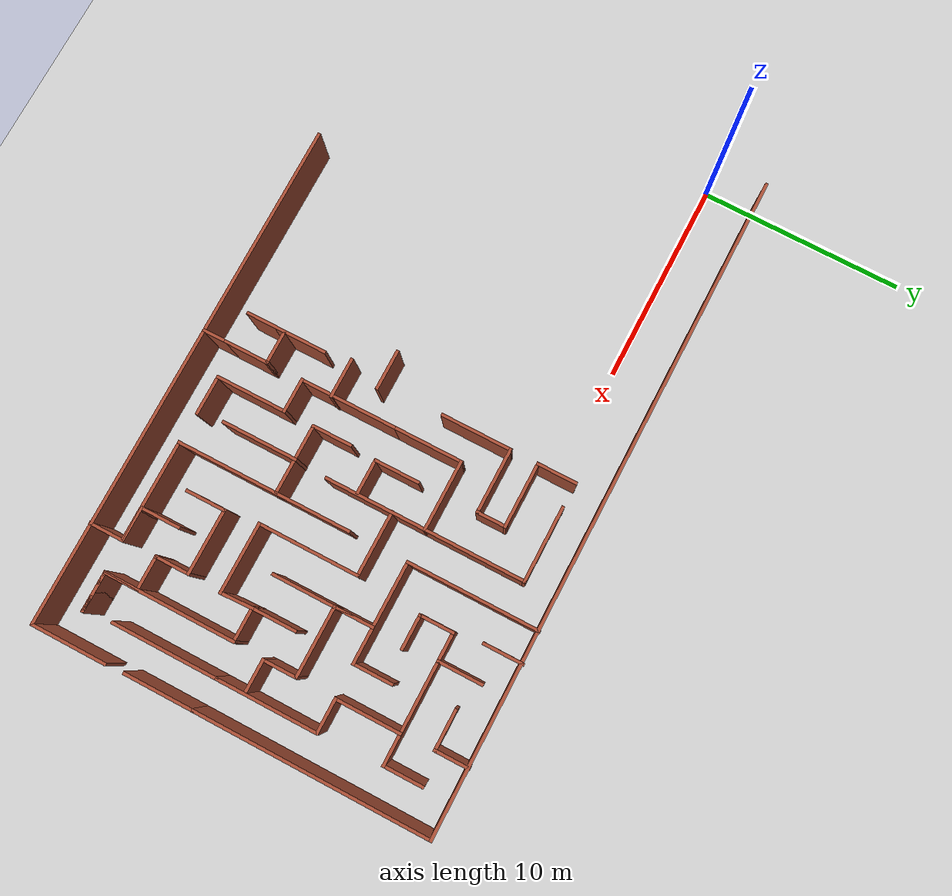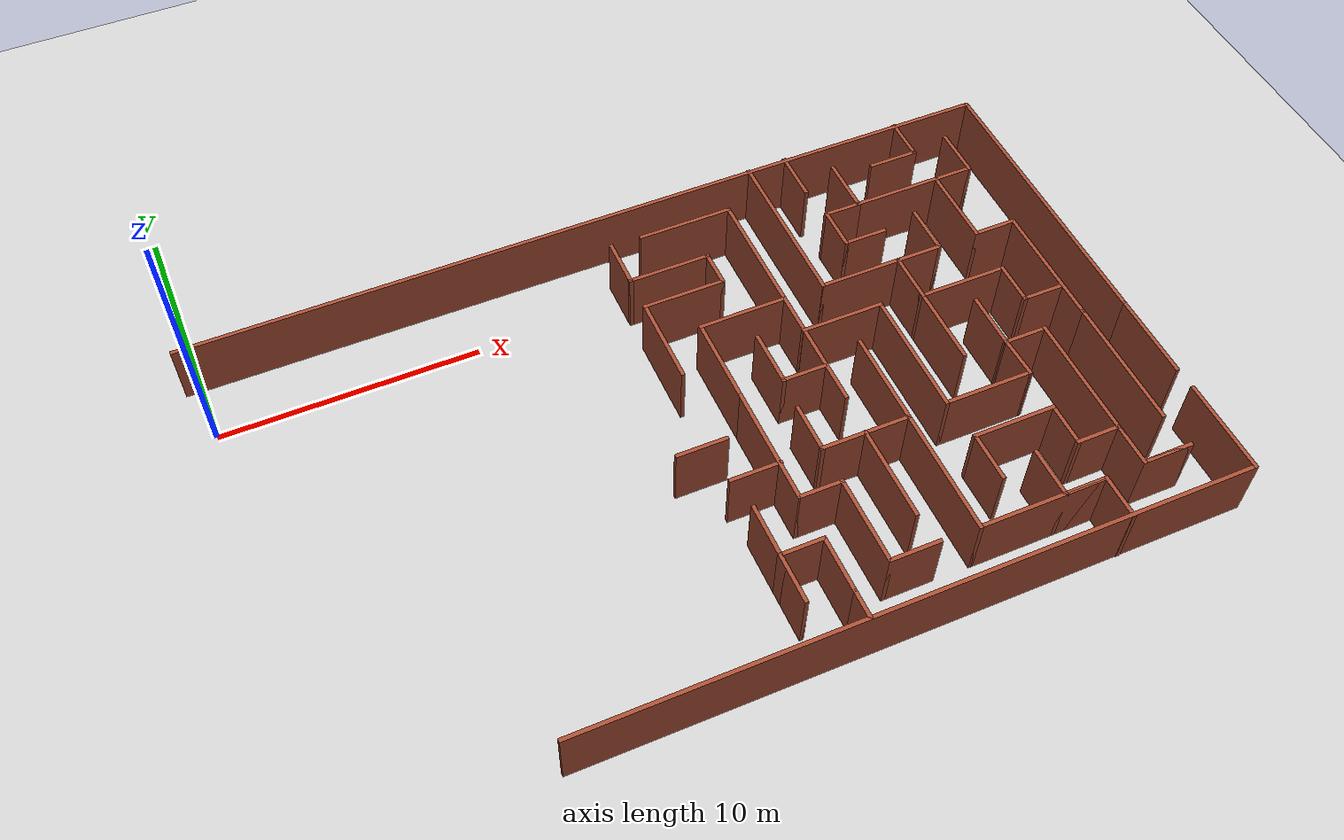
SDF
<sdf version="1.7">
 <world name="default">
  <model name="ground_plane">
   <static>1</static>
   <link name="link">
    <collision name="collision">
     <geometry><plane><normal>0 0 1</normal><size>100 100</size></plane></geometry>
     <surface>
      <contact><collide_bitmask>65535</collide_bitmask></contact>
      <friction><ode><mu>100</mu><mu2>50</mu2></ode></friction>
     </surface>
    </collision>
    <visual name="visual">
     <cast_shadows>0</cast_shadows>
     <geometry><plane><normal>0 0 1</normal><size>100 100</size></plane></geometry>
     <material>
      <script><uri>file://media/materials/scripts/gazebo.material</uri><name>Gazebo/Grey</name></script>
     </material>
    </visual>
   </link>
  </model>
  <model name="model_maze_2">
   <pose>15.6512 -7.28491 0 0 -0 0</pose>
   <link name="Wall_1">
    <collision name="Wall_1_Collision">
     <geometry><box><size>32.5 0.15 2.5</size></box></geometry>
     <pose>0 0 1.25 0 -0 0</pose>
    </collision>
    <visual name="Wall_1_Visual">
     <pose>0 0 1.25 0 -0 0</pose>
     <geometry><box><size>32.5 0.15 2.5</size></box></geometry>
     <material>
      <script><uri>file://media/materials/scripts/gazebo.material</uri><name>Gazebo/Bricks</name></script>
      <ambient>1 1 1 1</ambient>
     </material>
     <meta><layer>0</layer></meta>
    </visual>
    <pose>0.01583 9.60468 0 0 -0 0</pose>
   </link>
   <link name="Wall_100">
    <collision name="Wall_100_Collision">
     <geometry><box><size>1.75 0.15 2.5</size></box></geometry>
     <pose>0 0 1.25 0 -0 0</pose>
    </collision>
    <visual name="Wall_100_Visual">
     <pose>0 0 1.25 0 -0 0</pose>
     <geometry><box><size>1.75 0.15 2.5</size></box></geometry>
     <material>
      <script><uri>file://media/materials/scripts/gazebo.material</uri><name>Gazebo/Bricks</name></script>
      <ambient>1 1 1 1</ambient>
     </material>
     <meta><layer>0</layer></meta>
    </visual>
    <pose>11.303 -5.61671 0 0 -0 1.5708</pose>
   </link>
   <link name="Wall_101">
    <collision name="Wall_101_Collision">
     <geometry><box><size>3.25 0.15 2.5</size></box></geometry>
     <pose>0 0 1.25 0 -0 0</pose>
    </collision>
    <visual name="Wall_101_Visual">
     <pose>0 0 1.25 0 -0 0</pose>
     <geometry><box><size>3.25 0.15 2.5</size></box></geometry>
     <material>
      <script><uri>file://media/materials/scripts/gazebo.material</uri><name>Gazebo/Bricks</name></script>
      <ambient>1 1 1 1</ambient>
     </material>
     <meta><layer>0</layer></meta>
    </visual>
    <pose>9.75296 -4.81671 0 0 -0 3.14159</pose>
   </link>
   <link name="Wall_102">
    <collision name="Wall_102_Collision">
     <geometry><box><size>2 0.15 2.5</size></box></geometry>
     <pose>0 0 1.25 0 -0 0</pose>
    </collision>
    <visual name="Wall_102_Visual">
     <pose>0 0 1.25 0 -0 0</pose>
     <geometry><box><size>2 0.15 2.5</size></box></geometry>
     <material>
      <script><uri>file://media/materials/scripts/gazebo.material</uri><name>Gazebo/Bricks</name></script>
      <ambient>1 1 1 1</ambient>
     </material>
     <meta><layer>0</layer></meta>
    </visual>
    <pose>8.20296 -5.74171 0 0 -0 -1.5708</pose>
   </link>
   <link name="Wall_104">
    <collision name="Wall_104_Collision">
     <geometry><box><size>5.25 0.15 2.5</size></box></geometry>
     <pose>0 0 1.25 0 -0 0</pose>
    </collision>
    <visual name="Wall_104_Visual">
     <pose>0 0 1.25 0 -0 0</pose>
     <geometry><box><size>5.25 0.15 2.5</size></box></geometry>
     <material>
      <script><uri>file://media/materials/scripts/gazebo.material</uri><name>Gazebo/Bricks</name></script>
      <ambient>1 1 1 1</ambient>
     </material>
     <meta><layer>0</layer></meta>
    </visual>
    <pose>14.587 -4.07531 0 0 -0 -1.5708</pose>
   </link>
   <link name="Wall_106">
    <collision name="Wall_106_Collision">
     <geometry><box><size>3.5 0.15 2.5</size></box></geometry>
     <pose>0 0 1.25 0 -0 0</pose>
    </collision>
    <visual name="Wall_106_Visual">
     <pose>0 0 1.25 0 -0 0</pose>
     <geometry><box><size>3.5 0.15 2.5</size></box></geometry>
     <material>
      <script><uri>file://media/materials/scripts/gazebo.material</uri><name>Gazebo/Bricks</name></script>
      <ambient>1 1 1 1</ambient>
     </material>
     <meta><layer>0</layer></meta>
    </visual>
    <pose>16.1908 -3.42032 0 0 -0 -1.5708</pose>
   </link>
   <link name="Wall_108">
    <collision name="Wall_108_Collision">
     <geometry><box><size>4.75 0.15 2.5</size></box></geometry>
     <pose>0 0 1.25 0 -0 0</pose>
    </collision>
    <visual name="Wall_108_Visual">
     <pose>0 0 1.25 0 -0 0</pose>
     <geometry><box><size>4.75 0.15 2.5</size></box></geometry>
     <material>
      <script><uri>file://media/materials/scripts/gazebo.material</uri><name>Gazebo/Bricks</name></script>
      <ambient>1 1 1 1</ambient>
     </material>
     <meta><layer>0</layer></meta>
    </visual>
    <pose>1.57577 -2.37523 0 0 -0 -1.5708</pose>
   </link>
   <link name="Wall_109">
    <collision name="Wall_109_Collision">
     <geometry><box><size>1.75 0.15 2.5</size></box></geometry>
     <pose>0 0 1.25 0 -0 0</pose>
    </collision>
    <visual name="Wall_109_Visual">
     <pose>0 0 1.25 0 -0 0</pose>
     <geometry><box><size>1.75 0.15 2.5</size></box></geometry>
     <material>
      <script><uri>file://media/materials/scripts/gazebo.material</uri><name>Gazebo/Bricks</name></script>
      <ambient>1 1 1 1</ambient>
     </material>
     <meta><layer>0</layer></meta>
    </visual>
    <pose>2.37577 -4.67523 0 0 -0 0</pose>
   </link>
   <link name="Wall_110">
    <collision name="Wall_110_Collision">
     <geometry><box><size>3.5 0.15 2.5</size></box></geometry>
     <pose>0 0 1.25 0 -0 0</pose>
    </collision>
    <visual name="Wall_110_Visual">
     <pose>0 0 1.25 0 -0 0</pose>
     <geometry><box><size>3.5 0.15 2.5</size></box></geometry>
     <material>
      <script><uri>file://media/materials/scripts/gazebo.material</uri><name>Gazebo/Bricks</name></script>
      <ambient>1 1 1 1</ambient>
     </material>
     <meta><layer>0</layer></meta>
    </visual>
    <pose>3.17577 -6.35023 0 0 -0 -1.5708</pose>
   </link>
   <link name="Wall_111">
    <collision name="Wall_111_Collision">
     <geometry><box><size>2 0.15 2.5</size></box></geometry>
     <pose>0 0 1.25 0 -0 0</pose>
    </collision>
    <visual name="Wall_111_Visual">
     <pose>0 0 1.25 0 -0 0</pose>
     <geometry><box><size>2 0.15 2.5</size></box></geometry>
     <material>
      <script><uri>file://media/materials/scripts/gazebo.material</uri><name>Gazebo/Bricks</name></script>
      <ambient>1 1 1 1</ambient>
     </material>
     <meta><layer>0</layer></meta>
    </visual>
    <pose>4.10077 -8.02523 0 0 -0 0</pose>
   </link>
   <link name="Wall_113">
    <collision name="Wall_113_Collision">
     <geometry><box><size>3.75 0.15 2.5</size></box></geometry>
     <pose>0 0 1.25 0 -0 0</pose>
    </collision>
    <visual name="Wall_113_Visual">
     <pose>0 0 1.25 0 -0 0</pose>
     <geometry><box><size>3.75 0.15 2.5</size></box></geometry>
     <material>
      <script><uri>file://media/materials/scripts/gazebo.material</uri><name>Gazebo/Bricks</name></script>
      <ambient>1 1 1 1</ambient>
     </material>
     <meta><layer>0</layer></meta>
    </visual>
    <pose>6.51493 -1.41297 0 0 -0 -1.5708</pose>
   </link>
   <link name="Wall_114">
    <collision name="Wall_114_Collision">
     <geometry><box><size>3.5 0.15 2.5</size></box></geometry>
     <pose>0 0 1.25 0 -0 0</pose>
    </collision>
    <visual name="Wall_114_Visual">
     <pose>0 0 1.25 0 -0 0</pose>
     <geometry><box><size>3.5 0.15 2.5</size></box></geometry>
     <material>
      <script><uri>file://media/materials/scripts/gazebo.material</uri><name>Gazebo/Bricks</name></script>
      <ambient>1 1 1 1</ambient>
     </material>
     <meta><layer>0</layer></meta>
    </visual>
    <pose>4.83993 -3.21297 0 0 -0 3.14159</pose>
   </link>
   <link name="Wall_115">
    <collision name="Wall_115_Collision">
     <geometry><box><size>2 0.15 2.5</size></box></geometry>
     <pose>0 0 1.25 0 -0 0</pose>
    </collision>
    <visual name="Wall_115_Visual">
     <pose>0 0 1.25 0 -0 0</pose>
     <geometry><box><size>2 0.15 2.5</size></box></geometry>
     <material>
      <script><uri>file://media/materials/scripts/gazebo.material</uri><name>Gazebo/Bricks</name></script>
      <ambient>1 1 1 1</ambient>
     </material>
     <meta><layer>0</layer></meta>
    </visual>
    <pose>3.16493 -2.28797 0 0 -0 1.5708</pose>
   </link>
   <link name="Wall_117">
    <collision name="Wall_117_Collision">
     <geometry><box><size>5 0.15 2.5</size></box></geometry>
     <pose>0 0 1.25 0 -0 0</pose>
    </collision>
    <visual name="Wall_117_Visual">
     <pose>0 0 1.25 0 -0 0</pose>
     <geometry><box><size>5 0.15 2.5</size></box></geometry>
     <material>
      <script><uri>file://media/materials/scripts/gazebo.material</uri><name>Gazebo/Bricks</name></script>
      <ambient>1 1 1 1</ambient>
     </material>
     <meta><layer>0</layer></meta>
    </visual>
    <pose>6.51493 -5.63797 0 0 -0 -1.5708</pose>
   </link>
   <link name="Wall_118">
    <collision name="Wall_118_Collision">
     <geometry><box><size>5 0.15 2.5</size></box></geometry>
     <pose>0 0 1.25 0 -0 0</pose>
    </collision>
    <visual name="Wall_118_Visual">
     <pose>0 0 1.25 0 -0 0</pose>
     <geometry><box><size>5 0.15 2.5</size></box></geometry>
     <material>
      <script><uri>file://media/materials/scripts/gazebo.material</uri><name>Gazebo/Bricks</name></script>
      <ambient>1 1 1 1</ambient>
     </material>
     <meta><layer>0</layer></meta>
    </visual>
    <pose>8.93993 -8.06297 0 0 -0 0</pose>
   </link>
   <link name="Wall_119">
    <collision name="Wall_119_Collision">
     <geometry><box><size>1.75 0.15 2.5</size></box></geometry>
     <pose>0 0 1.25 0 -0 0</pose>
    </collision>
    <visual name="Wall_119_Visual">
     <pose>0 0 1.25 0 -0 0</pose>
     <geometry><box><size>1.75 0.15 2.5</size></box></geometry>
     <material>
      <script><uri>file://media/materials/scripts/gazebo.material</uri><name>Gazebo/Bricks</name></script>
      <ambient>1 1 1 1</ambient>
     </material>
     <meta><layer>0</layer></meta>
    </visual>
    <pose>10.5649 -8.06297 0 0 -0 3.14159</pose>
   </link>
   <link name="Wall_120">
    <collision name="Wall_120_Collision">
     <geometry><box><size>2 0.15 2.5</size></box></geometry>
     <pose>0 0 1.25 0 -0 0</pose>
    </collision>
    <visual name="Wall_120_Visual">
     <pose>0 0 1.25 0 -0 0</pose>
     <geometry><box><size>2 0.15 2.5</size></box></geometry>
     <material>
      <script><uri>file://media/materials/scripts/gazebo.material</uri><name>Gazebo/Bricks</name></script>
      <ambient>1 1 1 1</ambient>
     </material>
     <meta><layer>0</layer></meta>
    </visual>
    <pose>9.76493 -7.13797 0 0 -0 1.5708</pose>
   </link>
   <link name="Wall_122">
    <collision name="Wall_122_Collision">
     <geometry><box><size>3.75 0.15 2.5</size></box></geometry>
     <pose>0 0 1.25 0 -0 0</pose>
    </collision>
    <visual name="Wall_122_Visual">
     <pose>0 0 1.25 0 -0 0</pose>
     <geometry><box><size>3.75 0.15 2.5</size></box></geometry>
     <material>
      <script><uri>file://media/materials/scripts/gazebo.material</uri><name>Gazebo/Bricks</name></script>
      <ambient>1 1 1 1</ambient>
     </material>
     <meta><layer>0</layer></meta>
    </visual>
    <pose>4.82639 -4.99822 0 0 -0 -1.5708</pose>
   </link>
   <link name="Wall_124">
    <collision name="Wall_124_Collision">
     <geometry><box><size>2 0.15 2.5</size></box></geometry>
     <pose>0 0 1.25 0 -0 0</pose>
    </collision>
    <visual name="Wall_124_Visual">
     <pose>0 0 1.25 0 -0 0</pose>
     <geometry><box><size>2 0.15 2.5</size></box></geometry>
     <material>
      <script><uri>file://media/materials/scripts/gazebo.material</uri><name>Gazebo/Bricks</name></script>
      <ambient>1 1 1 1</ambient>
     </material>
     <meta><layer>0</layer></meta>
    </visual>
    <pose>0.686237 -3.17508 0 0 -0 3.14159</pose>
   </link>
   <link name="Wall_126">
    <collision name="Wall_126_Collision">
     <geometry><box><size>2 0.15 2.5</size></box></geometry>
     <pose>0 0 1.25 0 -0 0</pose>
    </collision>
    <visual name="Wall_126_Visual">
     <pose>0 0 1.25 0 -0 0</pose>
     <geometry><box><size>2 0.15 2.5</size></box></geometry>
     <material>
      <script><uri>file://media/materials/scripts/gazebo.material</uri><name>Gazebo/Bricks</name></script>
      <ambient>1 1 1 1</ambient>
     </material>
     <meta><layer>0</layer></meta>
    </visual>
    <pose>-0.562816 -1.55594 0 0 -0 3.14159</pose>
   </link>
   <link name="Wall_166">
    <collision name="Wall_166_Collision">
     <geometry><box><size>5 0.15 2.5</size></box></geometry>
     <pose>0 0 1.25 0 -0 0</pose>
    </collision>
    <visual name="Wall_166_Visual">
     <pose>0 0 1.25 0 -0 0</pose>
     <geometry><box><size>5 0.15 2.5</size></box></geometry>
     <material>
      <script><uri>file://media/materials/scripts/gazebo.material</uri><name>Gazebo/Bricks</name></script>
      <ambient>1 1 1 1</ambient>
     </material>
     <meta><layer>0</layer></meta>
    </visual>
    <pose>8.01446 -0.76522 0 0 -0 -1.5708</pose>
   </link>
   <link name="Wall_167">
    <collision name="Wall_167_Collision">
     <geometry><box><size>3.5 0.15 2.5</size></box></geometry>
     <pose>0 0 1.25 0 -0 0</pose>
    </collision>
    <visual name="Wall_167_Visual">
     <pose>0 0 1.25 0 -0 0</pose>
     <geometry><box><size>3.5 0.15 2.5</size></box></geometry>
     <material>
      <script><uri>file://media/materials/scripts/gazebo.material</uri><name>Gazebo/Bricks</name></script>
      <ambient>1 1 1 1</ambient>
     </material>
     <meta><layer>0</layer></meta>
    </visual>
    <pose>9.68946 -3.19022 0 0 -0 0</pose>
   </link>
   <link name="Wall_168">
    <collision name="Wall_168_Collision">
     <geometry><box><size>1.67475 0.15 2.5</size></box></geometry>
     <pose>0 0 1.25 0 -0 0</pose>
    </collision>
    <visual name="Wall_168_Visual">
     <pose>0 0 1.25 0 -0 0</pose>
     <geometry><box><size>1.67475 0.15 2.5</size></box></geometry>
     <material>
      <script><uri>file://media/materials/scripts/gazebo.material</uri><name>Gazebo/Bricks</name></script>
      <ambient>1 1 1 1</ambient>
     </material>
     <meta><layer>0</layer></meta>
    </visual>
    <pose>11.3337 -2.42847 0 0 -0 1.61114</pose>
   </link>
   <link name="Wall_172">
    <collision name="Wall_172_Collision">
     <geometry><box><size>4 0.15 2.5</size></box></geometry>
     <pose>0 0 1.25 0 -0 0</pose>
    </collision>
    <visual name="Wall_172_Visual">
     <pose>0 0 1.25 0 -0 0</pose>
     <geometry><box><size>4 0.15 2.5</size></box></geometry>
     <material>
      <script><uri>file://media/materials/scripts/gazebo.material</uri><name>Gazebo/Bricks</name></script>
      <ambient>1 1 1 1</ambient>
     </material>
     <meta><layer>0</layer></meta>
    </visual>
    <pose>0.008124 -6.36179 0 0 -0 -1.5708</pose>
   </link>
   <link name="Wall_173">
    <collision name="Wall_173_Collision">
     <geometry><box><size>2 0.15 2.5</size></box></geometry>
     <pose>0 0 1.25 0 -0 0</pose>
    </collision>
    <visual name="Wall_173_Visual">
     <pose>0 0 1.25 0 -0 0</pose>
     <geometry><box><size>2 0.15 2.5</size></box></geometry>
     <material>
      <script><uri>file://media/materials/scripts/gazebo.material</uri><name>Gazebo/Bricks</name></script>
      <ambient>1 1 1 1</ambient>
     </material>
     <meta><layer>0</layer></meta>
    </visual>
    <pose>0.008124 -7.36179 0 0 -0 1.5708</pose>
   </link>
   <link name="Wall_174">
    <collision name="Wall_174_Collision">
     <geometry><box><size>1.75 0.15 2.5</size></box></geometry>
     <pose>0 0 1.25 0 -0 0</pose>
    </collision>
    <visual name="Wall_174_Visual">
     <pose>0 0 1.25 0 -0 0</pose>
     <geometry><box><size>1.75 0.15 2.5</size></box></geometry>
     <material>
      <script><uri>file://media/materials/scripts/gazebo.material</uri><name>Gazebo/Bricks</name></script>
      <ambient>1 1 1 1</ambient>
     </material>
     <meta><layer>0</layer></meta>
    </visual>
    <pose>0.808124 -6.43679 0 0 -0 0</pose>
   </link>
   <link name="Wall_175">
    <collision name="Wall_175_Collision">
     <geometry><box><size>2.25 0.15 2.5</size></box></geometry>
     <pose>0 0 1.25 0 -0 0</pose>
    </collision>
    <visual name="Wall_175_Visual">
     <pose>0 0 1.25 0 -0 0</pose>
     <geometry><box><size>2.25 0.15 2.5</size></box></geometry>
     <material>
      <script><uri>file://media/materials/scripts/gazebo.material</uri><name>Gazebo/Bricks</name></script>
      <ambient>1 1 1 1</ambient>
     </material>
     <meta><layer>0</layer></meta>
    </visual>
    <pose>1.60812 -7.48679 0 0 -0 -1.5708</pose>
   </link>
   <link name="Wall_178">
    <collision name="Wall_178_Collision">
     <geometry><box><size>3.75 0.15 2.5</size></box></geometry>
     <pose>0 0 1.25 0 -0 0</pose>
    </collision>
    <visual name="Wall_178_Visual">
     <pose>0 0 1.25 0 -0 0</pose>
     <geometry><box><size>3.75 0.15 2.5</size></box></geometry>
     <material>
      <script><uri>file://media/materials/scripts/gazebo.material</uri><name>Gazebo/Bricks</name></script>
      <ambient>1 1 1 1</ambient>
     </material>
     <meta><layer>0</layer></meta>
    </visual>
    <pose>16.2369 -7.84031 0 0 -0 -1.5708</pose>
   </link>
   <link name="Wall_179">
    <collision name="Wall_179_Collision">
     <geometry><box><size>25.25 0.15 2.5</size></box></geometry>
     <pose>0 0 1.25 0 -0 0</pose>
    </collision>
    <visual name="Wall_179_Visual">
     <pose>0 0 1.25 0 -0 0</pose>
     <geometry><box><size>25.25 0.15 2.5</size></box></geometry>
     <material>
      <script><uri>file://media/materials/scripts/gazebo.material</uri><name>Gazebo/Bricks</name></script>
      <ambient>1 1 1 1</ambient>
     </material>
     <meta><layer>0</layer></meta>
    </visual>
    <pose>3.68691 -9.64031 0 0 -0 3.14159</pose>
   </link>
   <link name="Wall_183">
    <collision name="Wall_183_Collision">
     <geometry><box><size>1.25 0.15 2.5</size></box></geometry>
     <pose>0 0 1.25 0 -0 0</pose>
    </collision>
    <visual name="Wall_183_Visual">
     <pose>0 0 1.25 0 -0 0</pose>
     <geometry><box><size>1.25 0.15 2.5</size></box></geometry>
     <material>
      <script><uri>file://media/materials/scripts/gazebo.material</uri><name>Gazebo/Bricks</name></script>
      <ambient>1 1 1 1</ambient>
     </material>
     <meta><layer>0</layer></meta>
    </visual>
    <pose>1.60812 -9.08679 0 0 -0 -1.5708</pose>
   </link>
   <link name="Wall_185">
    <collision name="Wall_185_Collision">
     <geometry><box><size>1.75 0.15 2.5</size></box></geometry>
     <pose>0 0 1.25 0 -0 0</pose>
    </collision>
    <visual name="Wall_185_Visual">
     <pose>0 0 1.25 0 -0 0</pose>
     <geometry><box><size>1.75 0.15 2.5</size></box></geometry>
     <material>
      <script><uri>file://media/materials/scripts/gazebo.material</uri><name>Gazebo/Bricks</name></script>
      <ambient>1 1 1 1</ambient>
     </material>
     <meta><layer>0</layer></meta>
    </visual>
    <pose>11.3649 -8.86297 0 0 -0 -1.5708</pose>
   </link>
   <link name="Wall_2">
    <collision name="Wall_2_Collision">
     <geometry><box><size>11.5 0.15 2.5</size></box></geometry>
     <pose>0 0 1.25 0 -0 0</pose>
    </collision>
    <visual name="Wall_2_Visual">
     <pose>0 0 1.25 0 -0 0</pose>
     <geometry><box><size>11.5 0.15 2.5</size></box></geometry>
     <material>
      <script><uri>file://media/materials/scripts/gazebo.material</uri><name>Gazebo/Bricks</name></script>
      <ambient>1 1 1 1</ambient>
     </material>
     <meta><layer>0</layer></meta>
    </visual>
    <pose>16.1908 3.92968 0 0 -0 -1.5708</pose>
   </link>
   <link name="Wall_29">
    <collision name="Wall_29_Collision">
     <geometry><box><size>3.5 0.15 2.5</size></box></geometry>
     <pose>0 0 1.25 0 -0 0</pose>
    </collision>
    <visual name="Wall_29_Visual">
     <pose>0 0 1.25 0 -0 0</pose>
     <geometry><box><size>3.5 0.15 2.5</size></box></geometry>
     <material>
      <script><uri>file://media/materials/scripts/gazebo.material</uri><name>Gazebo/Bricks</name></script>
      <ambient>1 1 1 1</ambient>
     </material>
     <meta><layer>0</layer></meta>
    </visual>
    <pose>1.57577 1.59977 0 0 -0 1.5708</pose>
   </link>
   <link name="Wall_30">
    <collision name="Wall_30_Collision">
     <geometry><box><size>3.5 0.15 2.5</size></box></geometry>
     <pose>0 0 1.25 0 -0 0</pose>
    </collision>
    <visual name="Wall_30_Visual">
     <pose>0 0 1.25 0 -0 0</pose>
     <geometry><box><size>3.5 0.15 2.5</size></box></geometry>
     <material>
      <script><uri>file://media/materials/scripts/gazebo.material</uri><name>Gazebo/Bricks</name></script>
      <ambient>1 1 1 1</ambient>
     </material>
     <meta><layer>0</layer></meta>
    </visual>
    <pose>3.25077 3.27477 0 0 -0 0</pose>
   </link>
   <link name="Wall_31">
    <collision name="Wall_31_Collision">
     <geometry><box><size>5 0.15 2.5</size></box></geometry>
     <pose>0 0 1.25 0 -0 0</pose>
    </collision>
    <visual name="Wall_31_Visual">
     <pose>0 0 1.25 0 -0 0</pose>
     <geometry><box><size>5 0.15 2.5</size></box></geometry>
     <material>
      <script><uri>file://media/materials/scripts/gazebo.material</uri><name>Gazebo/Bricks</name></script>
      <ambient>1 1 1 1</ambient>
     </material>
     <meta><layer>0</layer></meta>
    </visual>
    <pose>4.92577 5.69977 0 0 -0 1.5708</pose>
   </link>
   <link name="Wall_32">
    <collision name="Wall_32_Collision">
     <geometry><box><size>3.75 0.15 2.5</size></box></geometry>
     <pose>0 0 1.25 0 -0 0</pose>
    </collision>
    <visual name="Wall_32_Visual">
     <pose>0 0 1.25 0 -0 0</pose>
     <geometry><box><size>3.75 0.15 2.5</size></box></geometry>
     <material>
      <script><uri>file://media/materials/scripts/gazebo.material</uri><name>Gazebo/Bricks</name></script>
      <ambient>1 1 1 1</ambient>
     </material>
     <meta><layer>0</layer></meta>
    </visual>
    <pose>3.12577 8.12477 0 0 -0 3.14159</pose>
   </link>
   <link name="Wall_49">
    <collision name="Wall_49_Collision">
     <geometry><box><size>3.5 0.15 2.5</size></box></geometry>
     <pose>0 0 1.25 0 -0 0</pose>
    </collision>
    <visual name="Wall_49_Visual">
     <pose>0 0 1.25 0 -0 0</pose>
     <geometry><box><size>3.5 0.15 2.5</size></box></geometry>
     <material>
      <script><uri>file://media/materials/scripts/gazebo.material</uri><name>Gazebo/Bricks</name></script>
      <ambient>1 1 1 1</ambient>
     </material>
     <meta><layer>0</layer></meta>
    </visual>
    <pose>0.107081 3.26484 0 0 -0 1.5708</pose>
   </link>
   <link name="Wall_50">
    <collision name="Wall_50_Collision">
     <geometry><box><size>3.25 0.15 2.5</size></box></geometry>
     <pose>0 0 1.25 0 -0 0</pose>
    </collision>
    <visual name="Wall_50_Visual">
     <pose>0 0 1.25 0 -0 0</pose>
     <geometry><box><size>3.25 0.15 2.5</size></box></geometry>
     <material>
      <script><uri>file://media/materials/scripts/gazebo.material</uri><name>Gazebo/Bricks</name></script>
      <ambient>1 1 1 1</ambient>
     </material>
     <meta><layer>0</layer></meta>
    </visual>
    <pose>1.65708 4.93984 0 0 -0 0</pose>
   </link>
   <link name="Wall_51">
    <collision name="Wall_51_Collision">
     <geometry><box><size>1.5 0.15 2.5</size></box></geometry>
     <pose>0 0 1.25 0 -0 0</pose>
    </collision>
    <visual name="Wall_51_Visual">
     <pose>0 0 1.25 0 -0 0</pose>
     <geometry><box><size>1.5 0.15 2.5</size></box></geometry>
     <material>
      <script><uri>file://media/materials/scripts/gazebo.material</uri><name>Gazebo/Bricks</name></script>
      <ambient>1 1 1 1</ambient>
     </material>
     <meta><layer>0</layer></meta>
    </visual>
    <pose>3.20708 5.61484 0 0 -0 1.5708</pose>
   </link>
   <link name="Wall_52">
    <collision name="Wall_52_Collision">
     <geometry><box><size>3.25 0.15 2.5</size></box></geometry>
     <pose>0 0 1.25 0 -0 0</pose>
    </collision>
    <visual name="Wall_52_Visual">
     <pose>0 0 1.25 0 -0 0</pose>
     <geometry><box><size>3.25 0.15 2.5</size></box></geometry>
     <material>
      <script><uri>file://media/materials/scripts/gazebo.material</uri><name>Gazebo/Bricks</name></script>
      <ambient>1 1 1 1</ambient>
     </material>
     <meta><layer>0</layer></meta>
    </visual>
    <pose>1.65708 6.28984 0 0 -0 3.14159</pose>
   </link>
   <link name="Wall_53">
    <collision name="Wall_53_Collision">
     <geometry><box><size>2 0.15 2.5</size></box></geometry>
     <pose>0 0 1.25 0 -0 0</pose>
    </collision>
    <visual name="Wall_53_Visual">
     <pose>0 0 1.25 0 -0 0</pose>
     <geometry><box><size>2 0.15 2.5</size></box></geometry>
     <material>
      <script><uri>file://media/materials/scripts/gazebo.material</uri><name>Gazebo/Bricks</name></script>
      <ambient>1 1 1 1</ambient>
     </material>
     <meta><layer>0</layer></meta>
    </visual>
    <pose>0.107081 7.21484 0 0 -0 1.5708</pose>
   </link>
   <link name="Wall_57">
    <collision name="Wall_57_Collision">
     <geometry><box><size>6.5 0.15 2.5</size></box></geometry>
     <pose>0 0 1.25 0 -0 0</pose>
    </collision>
    <visual name="Wall_57_Visual">
     <pose>0 0 1.25 0 -0 0</pose>
     <geometry><box><size>6.5 0.15 2.5</size></box></geometry>
     <material>
      <script><uri>file://media/materials/scripts/gazebo.material</uri><name>Gazebo/Bricks</name></script>
      <ambient>1 1 1 1</ambient>
     </material>
     <meta><layer>0</layer></meta>
    </visual>
    <pose>6.51047 6.46484 0 0 -0 -1.5708</pose>
   </link>
   <link name="Wall_58">
    <collision name="Wall_58_Collision">
     <geometry><box><size>5 0.15 2.5</size></box></geometry>
     <pose>0 0 1.25 0 -0 0</pose>
    </collision>
    <visual name="Wall_58_Visual">
     <pose>0 0 1.25 0 -0 0</pose>
     <geometry><box><size>5 0.15 2.5</size></box></geometry>
     <material>
      <script><uri>file://media/materials/scripts/gazebo.material</uri><name>Gazebo/Bricks</name></script>
      <ambient>1 1 1 1</ambient>
     </material>
     <meta><layer>0</layer></meta>
    </visual>
    <pose>8.93547 3.28984 0 0 -0 0</pose>
   </link>
   <link name="Wall_59">
    <collision name="Wall_59_Collision">
     <geometry><box><size>2 0.15 2.5</size></box></geometry>
     <pose>0 0 1.25 0 -0 0</pose>
    </collision>
    <visual name="Wall_59_Visual">
     <pose>0 0 1.25 0 -0 0</pose>
     <geometry><box><size>2 0.15 2.5</size></box></geometry>
     <material>
      <script><uri>file://media/materials/scripts/gazebo.material</uri><name>Gazebo/Bricks</name></script>
      <ambient>1 1 1 1</ambient>
     </material>
     <meta><layer>0</layer></meta>
    </visual>
    <pose>11.3605 4.21484 0 0 -0 1.5708</pose>
   </link>
   <link name="Wall_61">
    <collision name="Wall_61_Collision">
     <geometry><box><size>2 0.15 2.5</size></box></geometry>
     <pose>0 0 1.25 0 -0 0</pose>
    </collision>
    <visual name="Wall_61_Visual">
     <pose>0 0 1.25 0 -0 0</pose>
     <geometry><box><size>2 0.15 2.5</size></box></geometry>
     <material>
      <script><uri>file://media/materials/scripts/gazebo.material</uri><name>Gazebo/Bricks</name></script>
      <ambient>1 1 1 1</ambient>
     </material>
     <meta><layer>0</layer></meta>
    </visual>
    <pose>8.06022 8.73797 0 0 -0 -1.5708</pose>
   </link>
   <link name="Wall_63">
    <collision name="Wall_63_Collision">
     <geometry><box><size>1.75 0.15 2.5</size></box></geometry>
     <pose>0 0 1.25 0 -0 0</pose>
    </collision>
    <visual name="Wall_63_Visual">
     <pose>0 0 1.25 0 -0 0</pose>
     <geometry><box><size>1.75 0.15 2.5</size></box></geometry>
     <material>
      <script><uri>file://media/materials/scripts/gazebo.material</uri><name>Gazebo/Bricks</name></script>
      <ambient>1 1 1 1</ambient>
     </material>
     <meta><layer>0</layer></meta>
    </visual>
    <pose>12.9176 8.83984 0 0 -0 -1.5708</pose>
   </link>
   <link name="Wall_64">
    <collision name="Wall_64_Collision">
     <geometry><box><size>2 0.15 2.5</size></box></geometry>
     <pose>0 0 1.25 0 -0 0</pose>
    </collision>
    <visual name="Wall_64_Visual">
     <pose>0 0 1.25 0 -0 0</pose>
     <geometry><box><size>2 0.15 2.5</size></box></geometry>
     <material>
      <script><uri>file://media/materials/scripts/gazebo.material</uri><name>Gazebo/Bricks</name></script>
      <ambient>1 1 1 1</ambient>
     </material>
     <meta><layer>0</layer></meta>
    </visual>
    <pose>11.9926 8.03984 0 0 -0 3.14159</pose>
   </link>
   <link name="Wall_66">
    <collision name="Wall_66_Collision">
     <geometry><box><size>2.25 0.15 2.5</size></box></geometry>
     <pose>0 0 1.25 0 -0 0</pose>
    </collision>
    <visual name="Wall_66_Visual">
     <pose>0 0 1.25 0 -0 0</pose>
     <geometry><box><size>2.25 0.15 2.5</size></box></geometry>
     <material>
      <script><uri>file://media/materials/scripts/gazebo.material</uri><name>Gazebo/Bricks</name></script>
      <ambient>1 1 1 1</ambient>
     </material>
     <meta><layer>0</layer></meta>
    </visual>
    <pose>9.60997 7.47957 0 0 -0 -1.5708</pose>
   </link>
   <link name="Wall_67">
    <collision name="Wall_67_Collision">
     <geometry><box><size>5 0.15 2.5</size></box></geometry>
     <pose>0 0 1.25 0 -0 0</pose>
    </collision>
    <visual name="Wall_67_Visual">
     <pose>0 0 1.25 0 -0 0</pose>
     <geometry><box><size>5 0.15 2.5</size></box></geometry>
     <material>
      <script><uri>file://media/materials/scripts/gazebo.material</uri><name>Gazebo/Bricks</name></script>
      <ambient>1 1 1 1</ambient>
     </material>
     <meta><layer>0</layer></meta>
    </visual>
    <pose>12.035 6.42957 0 0 -0 0</pose>
   </link>
   <link name="Wall_68">
    <collision name="Wall_68_Collision">
     <geometry><box><size>2 0.15 2.5</size></box></geometry>
     <pose>0 0 1.25 0 -0 0</pose>
    </collision>
    <visual name="Wall_68_Visual">
     <pose>0 0 1.25 0 -0 0</pose>
     <geometry><box><size>2 0.15 2.5</size></box></geometry>
     <material>
      <script><uri>file://media/materials/scripts/gazebo.material</uri><name>Gazebo/Bricks</name></script>
      <ambient>1 1 1 1</ambient>
     </material>
     <meta><layer>0</layer></meta>
    </visual>
    <pose>14.46 7.35457 0 0 -0 1.5708</pose>
   </link>
   <link name="Wall_70">
    <collision name="Wall_70_Collision">
     <geometry><box><size>1.5 0.15 2.5</size></box></geometry>
     <pose>0 0 1.25 0 -0 0</pose>
    </collision>
    <visual name="Wall_70_Visual">
     <pose>0 0 1.25 0 -0 0</pose>
     <geometry><box><size>1.5 0.15 2.5</size></box></geometry>
     <material>
      <script><uri>file://media/materials/scripts/gazebo.material</uri><name>Gazebo/Bricks</name></script>
      <ambient>1 1 1 1</ambient>
     </material>
     <meta><layer>0</layer></meta>
    </visual>
    <pose>8.93497 6.42957 0 0 -0 3.14159</pose>
   </link>
   <link name="Wall_71">
    <collision name="Wall_71_Collision">
     <geometry><box><size>1.75 0.15 2.5</size></box></geometry>
     <pose>0 0 1.25 0 -0 0</pose>
    </collision>
    <visual name="Wall_71_Visual">
     <pose>0 0 1.25 0 -0 0</pose>
     <geometry><box><size>1.75 0.15 2.5</size></box></geometry>
     <material>
      <script><uri>file://media/materials/scripts/gazebo.material</uri><name>Gazebo/Bricks</name></script>
      <ambient>1 1 1 1</ambient>
     </material>
     <meta><layer>0</layer></meta>
    </visual>
    <pose>8.25997 5.62957 0 0 -0 -1.5708</pose>
   </link>
   <link name="Wall_72">
    <collision name="Wall_72_Collision">
     <geometry><box><size>1.75 0.15 2.5</size></box></geometry>
     <pose>0 0 1.25 0 -0 0</pose>
    </collision>
    <visual name="Wall_72_Visual">
     <pose>0 0 1.25 0 -0 0</pose>
     <geometry><box><size>1.75 0.15 2.5</size></box></geometry>
     <material>
      <script><uri>file://media/materials/scripts/gazebo.material</uri><name>Gazebo/Bricks</name></script>
      <ambient>1 1 1 1</ambient>
     </material>
     <meta><layer>0</layer></meta>
    </visual>
    <pose>9.05997 4.82957 0 0 -0 0</pose>
   </link>
   <link name="Wall_74">
    <collision name="Wall_74_Collision">
     <geometry><box><size>3.25 0.15 2.5</size></box></geometry>
     <pose>0 0 1.25 0 -0 0</pose>
    </collision>
    <visual name="Wall_74_Visual">
     <pose>0 0 1.25 0 -0 0</pose>
     <geometry><box><size>3.25 0.15 2.5</size></box></geometry>
     <material>
      <script><uri>file://media/materials/scripts/gazebo.material</uri><name>Gazebo/Bricks</name></script>
      <ambient>1 1 1 1</ambient>
     </material>
     <meta><layer>0</layer></meta>
    </visual>
    <pose>12.987 4.87469 0 0 -0 -1.5708</pose>
   </link>
   <link name="Wall_75">
    <collision name="Wall_75_Collision">
     <geometry><box><size>1.75 0.15 2.5</size></box></geometry>
     <pose>0 0 1.25 0 -0 0</pose>
    </collision>
    <visual name="Wall_75_Visual">
     <pose>0 0 1.25 0 -0 0</pose>
     <geometry><box><size>1.75 0.15 2.5</size></box></geometry>
     <material>
      <script><uri>file://media/materials/scripts/gazebo.material</uri><name>Gazebo/Bricks</name></script>
      <ambient>1 1 1 1</ambient>
     </material>
     <meta><layer>0</layer></meta>
    </visual>
    <pose>13.787 3.32469 0 0 -0 0</pose>
   </link>
   <link name="Wall_76">
    <collision name="Wall_76_Collision">
     <geometry><box><size>5 0.15 2.5</size></box></geometry>
     <pose>0 0 1.25 0 -0 0</pose>
    </collision>
    <visual name="Wall_76_Visual">
     <pose>0 0 1.25 0 -0 0</pose>
     <geometry><box><size>5 0.15 2.5</size></box></geometry>
     <material>
      <script><uri>file://media/materials/scripts/gazebo.material</uri><name>Gazebo/Bricks</name></script>
      <ambient>1 1 1 1</ambient>
     </material>
     <meta><layer>0</layer></meta>
    </visual>
    <pose>14.587 0.899685 0 0 -0 -1.5708</pose>
   </link>
   <link name="Wall_77">
    <collision name="Wall_77_Collision">
     <geometry><box><size>1.5 0.15 2.5</size></box></geometry>
     <pose>0 0 1.25 0 -0 0</pose>
    </collision>
    <visual name="Wall_77_Visual">
     <pose>0 0 1.25 0 -0 0</pose>
     <geometry><box><size>1.5 0.15 2.5</size></box></geometry>
     <material>
      <script><uri>file://media/materials/scripts/gazebo.material</uri><name>Gazebo/Bricks</name></script>
      <ambient>1 1 1 1</ambient>
     </material>
     <meta><layer>0</layer></meta>
    </visual>
    <pose>14.587 -0.850315 0 0 -0 1.5708</pose>
   </link>
   <link name="Wall_78">
    <collision name="Wall_78_Collision">
     <geometry><box><size>1.75 0.15 2.5</size></box></geometry>
     <pose>0 0 1.25 0 -0 0</pose>
    </collision>
    <visual name="Wall_78_Visual">
     <pose>0 0 1.25 0 -0 0</pose>
     <geometry><box><size>1.75 0.15 2.5</size></box></geometry>
     <material>
      <script><uri>file://media/materials/scripts/gazebo.material</uri><name>Gazebo/Bricks</name></script>
      <ambient>1 1 1 1</ambient>
     </material>
     <meta><layer>0</layer></meta>
    </visual>
    <pose>13.787 -0.175315 0 0 -0 3.14159</pose>
   </link>
   <link name="Wall_79">
    <collision name="Wall_79_Collision">
     <geometry><box><size>1.75 0.15 2.5</size></box></geometry>
     <pose>0 0 1.25 0 -0 0</pose>
    </collision>
    <visual name="Wall_79_Visual">
     <pose>0 0 1.25 0 -0 0</pose>
     <geometry><box><size>1.75 0.15 2.5</size></box></geometry>
     <material>
      <script><uri>file://media/materials/scripts/gazebo.material</uri><name>Gazebo/Bricks</name></script>
      <ambient>1 1 1 1</ambient>
     </material>
     <meta><layer>0</layer></meta>
    </visual>
    <pose>12.987 0.624685 0 0 -0 1.5708</pose>
   </link>
   <link name="Wall_80">
    <collision name="Wall_80_Collision">
     <geometry><box><size>3.5 0.15 2.5</size></box></geometry>
     <pose>0 0 1.25 0 -0 0</pose>
    </collision>
    <visual name="Wall_80_Visual">
     <pose>0 0 1.25 0 -0 0</pose>
     <geometry><box><size>3.5 0.15 2.5</size></box></geometry>
     <material>
      <script><uri>file://media/materials/scripts/gazebo.material</uri><name>Gazebo/Bricks</name></script>
      <ambient>1 1 1 1</ambient>
     </material>
     <meta><layer>0</layer></meta>
    </visual>
    <pose>11.312 1.42468 0 0 -0 3.14159</pose>
   </link>
   <link name="Wall_81">
    <collision name="Wall_81_Collision">
     <geometry><box><size>2 0.15 2.5</size></box></geometry>
     <pose>0 0 1.25 0 -0 0</pose>
    </collision>
    <visual name="Wall_81_Visual">
     <pose>0 0 1.25 0 -0 0</pose>
     <geometry><box><size>2 0.15 2.5</size></box></geometry>
     <material>
      <script><uri>file://media/materials/scripts/gazebo.material</uri><name>Gazebo/Bricks</name></script>
      <ambient>1 1 1 1</ambient>
     </material>
     <meta><layer>0</layer></meta>
    </visual>
    <pose>9.63704 2.34969 0 0 -0 1.5708</pose>
   </link>
   <link name="Wall_82">
    <collision name="Wall_82_Collision">
     <geometry><box><size>5 0.15 2.5</size></box></geometry>
     <pose>0 0 1.25 0 -0 0</pose>
    </collision>
    <visual name="Wall_82_Visual">
     <pose>0 0 1.25 0 -0 0</pose>
     <geometry><box><size>5 0.15 2.5</size></box></geometry>
     <material>
      <script><uri>file://media/materials/scripts/gazebo.material</uri><name>Gazebo/Bricks</name></script>
      <ambient>1 1 1 1</ambient>
     </material>
     <meta><layer>0</layer></meta>
    </visual>
    <pose>9.63704 0.849685 0 0 -0 -1.5708</pose>
   </link>
   <link name="Wall_86">
    <collision name="Wall_86_Collision">
     <geometry><box><size>5 0.15 2.5</size></box></geometry>
     <pose>0 0 1.25 0 -0 0</pose>
    </collision>
    <visual name="Wall_86_Visual">
     <pose>0 0 1.25 0 -0 0</pose>
     <geometry><box><size>5 0.15 2.5</size></box></geometry>
     <material>
      <script><uri>file://media/materials/scripts/gazebo.material</uri><name>Gazebo/Bricks</name></script>
      <ambient>1 1 1 1</ambient>
     </material>
     <meta><layer>0</layer></meta>
    </visual>
    <pose>4.92577 0.849768 0 0 -0 -1.5708</pose>
   </link>
   <link name="Wall_88">
    <collision name="Wall_88_Collision">
     <geometry><box><size>3.25 0.15 2.5</size></box></geometry>
     <pose>0 0 1.25 0 -0 0</pose>
    </collision>
    <visual name="Wall_88_Visual">
     <pose>0 0 1.25 0 -0 0</pose>
     <geometry><box><size>3.25 0.15 2.5</size></box></geometry>
     <material>
      <script><uri>file://media/materials/scripts/gazebo.material</uri><name>Gazebo/Bricks</name></script>
      <ambient>1 1 1 1</ambient>
     </material>
     <meta><layer>0</layer></meta>
    </visual>
    <pose>6.46446 1.65978 0 0 -0 0</pose>
   </link>
   <link name="Wall_90">
    <collision name="Wall_90_Collision">
     <geometry><box><size>2.25 0.15 2.5</size></box></geometry>
     <pose>0 0 1.25 0 -0 0</pose>
    </collision>
    <visual name="Wall_90_Visual">
     <pose>0 0 1.25 0 -0 0</pose>
     <geometry><box><size>2.25 0.15 2.5</size></box></geometry>
     <material>
      <script><uri>file://media/materials/scripts/gazebo.material</uri><name>Gazebo/Bricks</name></script>
      <ambient>1 1 1 1</ambient>
     </material>
     <meta><layer>0</layer></meta>
    </visual>
    <pose>3.24905 0.979869 0 0 -0 -1.5708</pose>
   </link>
   <link name="Wall_91">
    <collision name="Wall_91_Collision">
     <geometry><box><size>1.75 0.15 2.5</size></box></geometry>
     <pose>0 0 1.25 0 -0 0</pose>
    </collision>
    <visual name="Wall_91_Visual">
     <pose>0 0 1.25 0 -0 0</pose>
     <geometry><box><size>1.75 0.15 2.5</size></box></geometry>
     <material>
      <script><uri>file://media/materials/scripts/gazebo.material</uri><name>Gazebo/Bricks</name></script>
      <ambient>1 1 1 1</ambient>
     </material>
     <meta><layer>0</layer></meta>
    </visual>
    <pose>4.04906 -0.070131 0 0 -0 0</pose>
   </link>
   <link name="Wall_93">
    <collision name="Wall_93_Collision">
     <geometry><box><size>2.25 0.15 2.5</size></box></geometry>
     <pose>0 0 1.25 0 -0 0</pose>
    </collision>
    <visual name="Wall_93_Visual">
     <pose>0 0 1.25 0 -0 0</pose>
     <geometry><box><size>2.25 0.15 2.5</size></box></geometry>
     <material>
      <script><uri>file://media/materials/scripts/gazebo.material</uri><name>Gazebo/Bricks</name></script>
      <ambient>1 1 1 1</ambient>
     </material>
     <meta><layer>0</layer></meta>
    </visual>
    <pose>11.303 -0.61671 0 0 -0 -1.5708</pose>
   </link>
   <link name="Wall_94">
    <collision name="Wall_94_Collision">
     <geometry><box><size>1.75 0.15 2.5</size></box></geometry>
     <pose>0 0 1.25 0 -0 0</pose>
    </collision>
    <visual name="Wall_94_Visual">
     <pose>0 0 1.25 0 -0 0</pose>
     <geometry><box><size>1.75 0.15 2.5</size></box></geometry>
     <material>
      <script><uri>file://media/materials/scripts/gazebo.material</uri><name>Gazebo/Bricks</name></script>
      <ambient>1 1 1 1</ambient>
     </material>
     <meta><layer>0</layer></meta>
    </visual>
    <pose>12.103 -1.66671 0 0 -0 0</pose>
   </link>
   <link name="Wall_95">
    <collision name="Wall_95_Collision">
     <geometry><box><size>6.5 0.15 2.5</size></box></geometry>
     <pose>0 0 1.25 0 -0 0</pose>
    </collision>
    <visual name="Wall_95_Visual">
     <pose>0 0 1.25 0 -0 0</pose>
     <geometry><box><size>6.5 0.15 2.5</size></box></geometry>
     <material>
      <script><uri>file://media/materials/scripts/gazebo.material</uri><name>Gazebo/Bricks</name></script>
      <ambient>1 1 1 1</ambient>
     </material>
     <meta><layer>0</layer></meta>
    </visual>
    <pose>12.903 -4.84171 0 0 -0 -1.5708</pose>
   </link>
   <link name="Wall_96">
    <collision name="Wall_96_Collision">
     <geometry><box><size>2 0.15 2.5</size></box></geometry>
     <pose>0 0 1.25 0 -0 0</pose>
    </collision>
    <visual name="Wall_96_Visual">
     <pose>0 0 1.25 0 -0 0</pose>
     <geometry><box><size>2 0.15 2.5</size></box></geometry>
     <material>
      <script><uri>file://media/materials/scripts/gazebo.material</uri><name>Gazebo/Bricks</name></script>
      <ambient>1 1 1 1</ambient>
     </material>
     <meta><layer>0</layer></meta>
    </visual>
    <pose>13.828 -8.01671 0 0 -0 0</pose>
   </link>
   <link name="Wall_97">
    <collision name="Wall_97_Collision">
     <geometry><box><size>2 0.15 2.5</size></box></geometry>
     <pose>0 0 1.25 0 -0 0</pose>
    </collision>
    <visual name="Wall_97_Visual">
     <pose>0 0 1.25 0 -0 0</pose>
     <geometry><box><size>2 0.15 2.5</size></box></geometry>
     <material>
      <script><uri>file://media/materials/scripts/gazebo.material</uri><name>Gazebo/Bricks</name></script>
      <ambient>1 1 1 1</ambient>
     </material>
     <meta><layer>0</layer></meta>
    </visual>
    <pose>13.828 -8.01671 0 0 -0 3.14159</pose>
   </link>
   <link name="Wall_98">
    <collision name="Wall_98_Collision">
     <geometry><box><size>1.75 0.15 2.5</size></box></geometry>
     <pose>0 0 1.25 0 -0 0</pose>
    </collision>
    <visual name="Wall_98_Visual">
     <pose>0 0 1.25 0 -0 0</pose>
     <geometry><box><size>1.75 0.15 2.5</size></box></geometry>
     <material>
      <script><uri>file://media/materials/scripts/gazebo.material</uri><name>Gazebo/Bricks</name></script>
      <ambient>1 1 1 1</ambient>
     </material>
     <meta><layer>0</layer></meta>
    </visual>
    <pose>12.903 -7.21671 0 0 -0 1.5708</pose>
   </link>
   <link name="Wall_99">
    <collision name="Wall_99_Collision">
     <geometry><box><size>1.75 0.15 2.5</size></box></geometry>
     <pose>0 0 1.25 0 -0 0</pose>
    </collision>
    <visual name="Wall_99_Visual">
     <pose>0 0 1.25 0 -0 0</pose>
     <geometry><box><size>1.75 0.15 2.5</size></box></geometry>
     <material>
      <script><uri>file://media/materials/scripts/gazebo.material</uri><name>Gazebo/Bricks</name></script>
      <ambient>1 1 1 1</ambient>
     </material>
     <meta><layer>0</layer></meta>
    </visual>
    <pose>12.103 -6.41671 0 0 -0 3.14159</pose>
   </link>
   <static>1</static>
  </model>
 </world>
</sdf>
